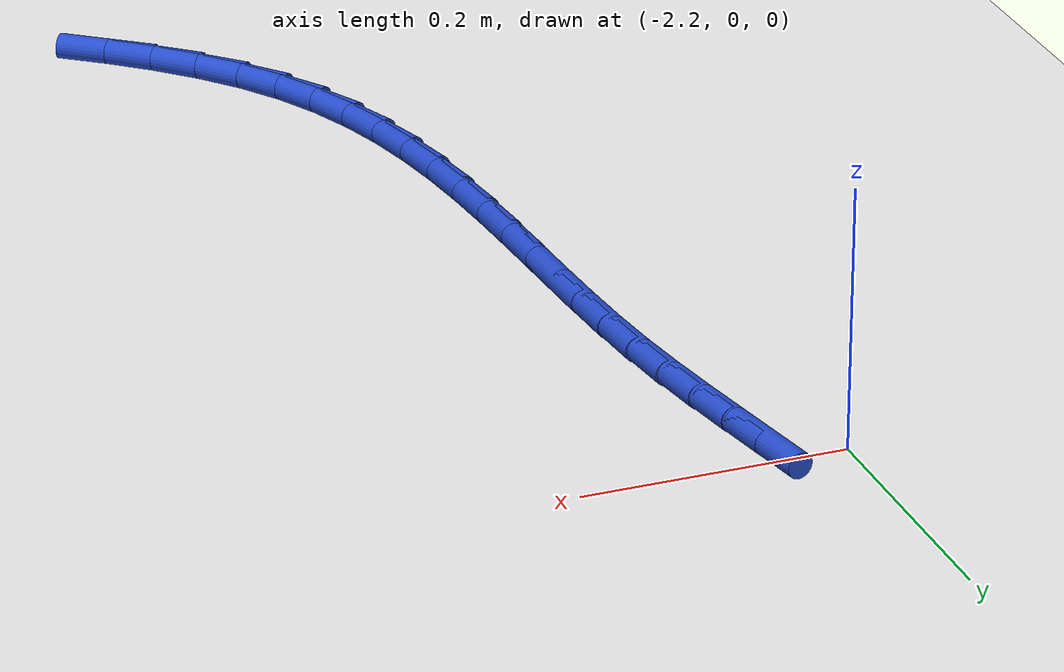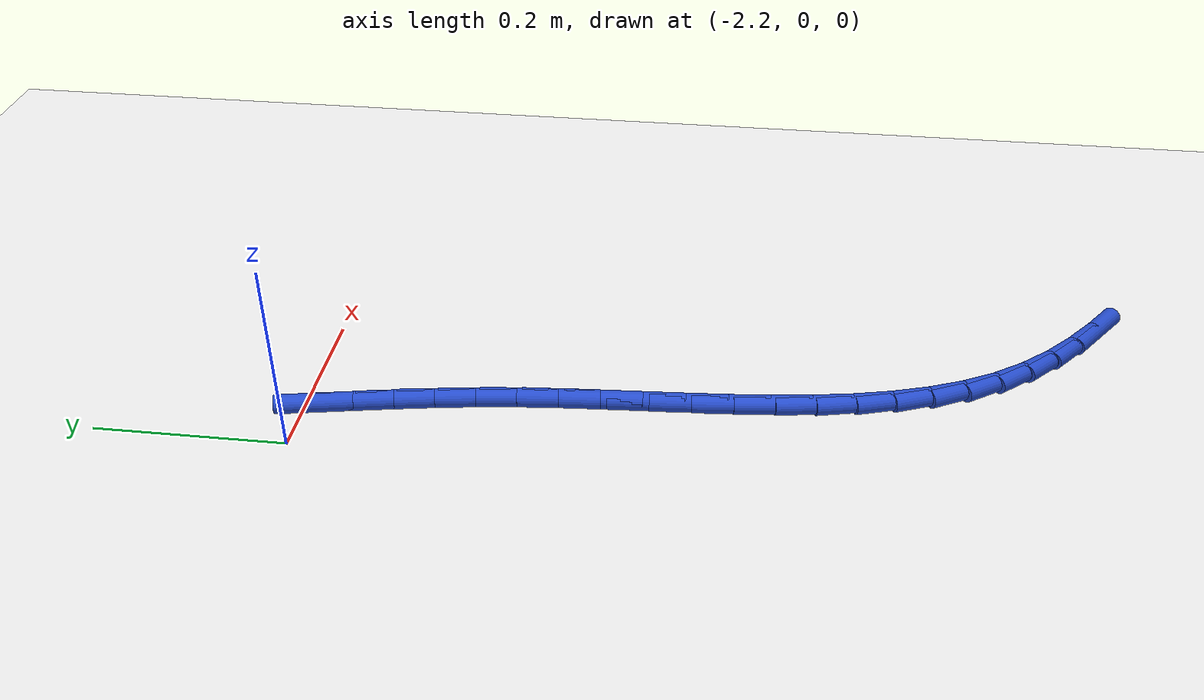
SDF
<sdf version="1.6">
 <world name="default">
  <model name="ground_plane">
   <static>1</static>
   <link name="link">
    <collision name="collision">
     <geometry><plane><normal>0 0 1</normal><size>100 100</size></plane></geometry>
     <surface><friction><ode><mu>100</mu><mu2>50</mu2></ode></friction></surface>
    </collision>
    <visual name="visual">
     <cast_shadows>0</cast_shadows>
     <geometry><plane><normal>0 0 1</normal><size>100 100</size></plane></geometry>
     <material>
      <script><uri>file://media/materials/scripts/gazebo.material</uri><name>Gazebo/WhiteGlow</name></script>
     </material>
    </visual>
   </link>
  </model>
  <model name="line">
   <link name="link_86">
    <pose>-2.1442486373655147 -0.011893876327815913 0.01 0 1.57 -1.3827141860553835</pose>
    <collision name="collision">
     <geometry><cylinder><radius>0.01</radius><length>0.08</length></cylinder></geometry>
    </collision>
    <visual name="visual">
     <material>
      <script><name>Gazebo/Blue</name><uri>file://media/materials/scripts/gazebo.material</uri></script>
     </material>
     <geometry><cylinder><radius>0.01</radius><length>0.08</length></cylinder></geometry>
    </visual>
   </link>
   <link name="link_87">
    <pose>-2.1365965699456617 -0.052097712407509864 0.01 0 1.57 -1.386688696020316</pose>
    <collision name="collision">
     <geometry><cylinder><radius>0.01</radius><length>0.08</length></cylinder></geometry>
    </collision>
    <visual name="visual">
     <material>
      <script><name>Gazebo/Blue</name><uri>file://media/materials/scripts/gazebo.material</uri></script>
     </material>
     <geometry><cylinder><radius>0.01</radius><length>0.08</length></cylinder></geometry>
    </visual>
   </link>
   <link name="link_88">
    <pose>-2.129053987602604 -0.09260211164205814 0.01 0 1.57 -1.4003424032719898</pose>
    <collision name="collision">
     <geometry><cylinder><radius>0.01</radius><length>0.08</length></cylinder></geometry>
    </collision>
    <visual name="visual">
     <material>
      <script><name>Gazebo/Blue</name><uri>file://media/materials/scripts/gazebo.material</uri></script>
     </material>
     <geometry><cylinder><radius>0.01</radius><length>0.08</length></cylinder></geometry>
    </visual>
   </link>
   <link name="link_89">
    <pose>-2.122010461356293 -0.13352330683894276 0.01 0 1.57 -1.4233985502641076</pose>
    <collision name="collision">
     <geometry><cylinder><radius>0.01</radius><length>0.08</length></cylinder></geometry>
    </collision>
    <visual name="visual">
     <material>
      <script><name>Gazebo/Blue</name><uri>file://media/materials/scripts/gazebo.material</uri></script>
     </material>
     <geometry><cylinder><radius>0.01</radius><length>0.08</length></cylinder></geometry>
    </visual>
   </link>
   <link name="link_90">
    <pose>-2.1158555622266846 -0.17497753080564318 0.01 0 1.57 -1.4549365931717129</pose>
    <collision name="collision">
     <geometry><cylinder><radius>0.01</radius><length>0.08</length></cylinder></geometry>
    </collision>
    <visual name="visual">
     <material>
      <script><name>Gazebo/Blue</name><uri>file://media/materials/scripts/gazebo.material</uri></script>
     </material>
     <geometry><cylinder><radius>0.01</radius><length>0.08</length></cylinder></geometry>
    </visual>
   </link>
   <link name="link_91">
    <pose>-2.110956618278102 -0.21707156870780195 0.01 0 1.57 -1.484577948276998</pose>
    <collision name="collision">
     <geometry><cylinder><radius>0.01</radius><length>0.08</length></cylinder></geometry>
    </collision>
    <visual name="visual">
     <material>
      <script><name>Gazebo/Blue</name><uri>file://media/materials/scripts/gazebo.material</uri></script>
     </material>
     <geometry><cylinder><radius>0.01</radius><length>0.08</length></cylinder></geometry>
    </visual>
   </link>
   <link name="link_92">
    <pose>-2.1072689152637545 -0.2597371917316656 0.01 0 1.57 -1.5038380625643148</pose>
    <collision name="collision">
     <geometry><cylinder><radius>0.01</radius><length>0.08</length></cylinder></geometry>
    </collision>
    <visual name="visual">
     <material>
      <script><name>Gazebo/Blue</name><uri>file://media/materials/scripts/gazebo.material</uri></script>
     </material>
     <geometry><cylinder><radius>0.01</radius><length>0.08</length></cylinder></geometry>
    </visual>
   </link>
   <link name="link_93">
    <pose>-2.104384416281352 -0.30275185064048804 0.01 0 1.57 -1.5128634796822065</pose>
    <collision name="collision">
     <geometry><cylinder><radius>0.01</radius><length>0.08</length></cylinder></geometry>
    </collision>
    <visual name="visual">
     <material>
      <script><name>Gazebo/Blue</name><uri>file://media/materials/scripts/gazebo.material</uri></script>
     </material>
     <geometry><cylinder><radius>0.01</radius><length>0.08</length></cylinder></geometry>
    </visual>
   </link>
   <link name="link_94">
    <pose>-2.1018826337960066 -0.34588770782130995 0.01 0 1.57 -1.5118454291751737</pose>
    <collision name="collision">
     <geometry><cylinder><radius>0.01</radius><length>0.08</length></cylinder></geometry>
    </collision>
    <visual name="visual">
     <material>
      <script><name>Gazebo/Blue</name><uri>file://media/materials/scripts/gazebo.material</uri></script>
     </material>
     <geometry><cylinder><radius>0.01</radius><length>0.08</length></cylinder></geometry>
    </visual>
   </link>
   <link name="link_95">
    <pose>-2.09934308027283 -0.3889169256611693 0.01 0 1.57 -1.5006963565795994</pose>
    <collision name="collision">
     <geometry><cylinder><radius>0.01</radius><length>0.08</length></cylinder></geometry>
    </collision>
    <visual name="visual">
     <material>
      <script><name>Gazebo/Blue</name><uri>file://media/materials/scripts/gazebo.material</uri></script>
     </material>
     <geometry><cylinder><radius>0.01</radius><length>0.08</length></cylinder></geometry>
    </visual>
   </link>
   <link name="link_96">
    <pose>-2.0963452681769335 -0.43161166654710675 0.01 0 1.57 -1.4790457538364539</pose>
    <collision name="collision">
     <geometry><cylinder><radius>0.01</radius><length>0.08</length></cylinder></geometry>
    </collision>
    <visual name="visual">
     <material>
      <script><name>Gazebo/Blue</name><uri>file://media/materials/scripts/gazebo.material</uri></script>
     </material>
     <geometry><cylinder><radius>0.01</radius><length>0.08</length></cylinder></geometry>
    </visual>
   </link>
   <link name="link_97">
    <pose>-2.0924687099734287 -0.4737440928661618 0.01 0 1.57 -1.4462506267970623</pose>
    <collision name="collision">
     <geometry><cylinder><radius>0.01</radius><length>0.08</length></cylinder></geometry>
    </collision>
    <visual name="visual">
     <material>
      <script><name>Gazebo/Blue</name><uri>file://media/materials/scripts/gazebo.material</uri></script>
     </material>
     <geometry><cylinder><radius>0.01</radius><length>0.08</length></cylinder></geometry>
    </visual>
   </link>
   <link name="link_98">
    <pose>-2.087292918127427 -0.5150863670053745 0.01 0 1.57 -1.401432963454915</pose>
    <collision name="collision">
     <geometry><cylinder><radius>0.01</radius><length>0.08</length></cylinder></geometry>
    </collision>
    <visual name="visual">
     <material>
      <script><name>Gazebo/Blue</name><uri>file://media/materials/scripts/gazebo.material</uri></script>
     </material>
     <geometry><cylinder><radius>0.01</radius><length>0.08</length></cylinder></geometry>
    </visual>
   </link>
   <link name="link_99">
    <pose>-2.0803974051040397 -0.555410651351785 0.01 0 1.57 -1.343569521111235</pose>
    <collision name="collision">
     <geometry><cylinder><radius>0.01</radius><length>0.08</length></cylinder></geometry>
    </collision>
    <visual name="visual">
     <material>
      <script><name>Gazebo/Blue</name><uri>file://media/materials/scripts/gazebo.material</uri></script>
     </material>
     <geometry><cylinder><radius>0.01</radius><length>0.08</length></cylinder></geometry>
    </visual>
   </link>
   <link name="link_100">
    <pose>-2.071361683368379 -0.5944891082924317 0.01 0 1.57 -1.2716728883143111</pose>
    <collision name="collision">
     <geometry><cylinder><radius>0.01</radius><length>0.08</length></cylinder></geometry>
    </collision>
    <visual name="visual">
     <material>
      <script><name>Gazebo/Blue</name><uri>file://media/materials/scripts/gazebo.material</uri></script>
     </material>
     <geometry><cylinder><radius>0.01</radius><length>0.08</length></cylinder></geometry>
    </visual>
   </link>
   <link name="link_101">
    <pose>-2.0597652653855554 -0.6320939002143549 0.01 0 1.57 -1.1851075467900452</pose>
    <collision name="collision">
     <geometry><cylinder><radius>0.01</radius><length>0.08</length></cylinder></geometry>
    </collision>
    <visual name="visual">
     <material>
      <script><name>Gazebo/Blue</name><uri>file://media/materials/scripts/gazebo.material</uri></script>
     </material>
     <geometry><cylinder><radius>0.01</radius><length>0.08</length></cylinder></geometry>
    </visual>
   </link>
   <link name="link_102">
    <pose>-2.0451876636206814 -0.6679971895045945 0.01 0 1.57 -1.0840565536095168</pose>
    <collision name="collision">
     <geometry><cylinder><radius>0.01</radius><length>0.08</length></cylinder></geometry>
    </collision>
    <visual name="visual">
     <material>
      <script><name>Gazebo/Blue</name><uri>file://media/materials/scripts/gazebo.material</uri></script>
     </material>
     <geometry><cylinder><radius>0.01</radius><length>0.08</length></cylinder></geometry>
    </visual>
   </link>
   <link name="link_103">
    <pose>-2.0272083905388687 -0.7019711385501901 0.01 0 1.57 -0.9711878049467965</pose>
    <collision name="collision">
     <geometry><cylinder><radius>0.01</radius><length>0.08</length></cylinder></geometry>
    </collision>
    <visual name="visual">
     <material>
      <script><name>Gazebo/Blue</name><uri>file://media/materials/scripts/gazebo.material</uri></script>
     </material>
     <geometry><cylinder><radius>0.01</radius><length>0.08</length></cylinder></geometry>
    </visual>
   </link>
   <link name="link_104">
    <pose>-2.0054460209244778 -0.7338078431716478 0.01 0 1.57 -0.8640282366280053</pose>
    <collision name="collision">
     <geometry><cylinder><radius>0.01</radius><length>0.08</length></cylinder></geometry>
    </collision>
    <visual name="visual">
     <material>
      <script><name>Gazebo/Blue</name><uri>file://media/materials/scripts/gazebo.material</uri></script>
     </material>
     <geometry><cylinder><radius>0.01</radius><length>0.08</length></cylinder></geometry>
    </visual>
   </link>
   <link name="link_105">
    <pose>-1.9800368540178983 -0.7635635930774826 0.01 0 1.57 -0.77416474549689</pose>
    <collision name="collision">
     <geometry><cylinder><radius>0.01</radius><length>0.08</length></cylinder></geometry>
    </collision>
    <visual name="visual">
     <material>
      <script><name>Gazebo/Blue</name><uri>file://media/materials/scripts/gazebo.material</uri></script>
     </material>
     <geometry><cylinder><radius>0.01</radius><length>0.08</length></cylinder></geometry>
    </visual>
   </link>
   <link name="link_106">
    <pose>-1.9514841300766068 -0.7914819273380054 0.01 0 1.57 -0.7011515112616201</pose>
    <collision name="collision">
     <geometry><cylinder><radius>0.01</radius><length>0.08</length></cylinder></geometry>
    </collision>
    <visual name="visual">
     <material>
      <script><name>Gazebo/Blue</name><uri>file://media/materials/scripts/gazebo.material</uri></script>
     </material>
     <geometry><cylinder><radius>0.01</radius><length>0.08</length></cylinder></geometry>
    </visual>
   </link>
   <link name="link_107">
    <pose>-1.9202988702500876 -0.8178103555991634 0.01 0 1.57 -0.6436154490286321</pose>
    <collision name="collision">
     <geometry><cylinder><radius>0.01</radius><length>0.08</length></cylinder></geometry>
    </collision>
    <visual name="visual">
     <material>
      <script><name>Gazebo/Blue</name><uri>file://media/materials/scripts/gazebo.material</uri></script>
     </material>
     <geometry><cylinder><radius>0.01</radius><length>0.08</length></cylinder></geometry>
    </visual>
   </link>
  </model>
 </world>
</sdf>
